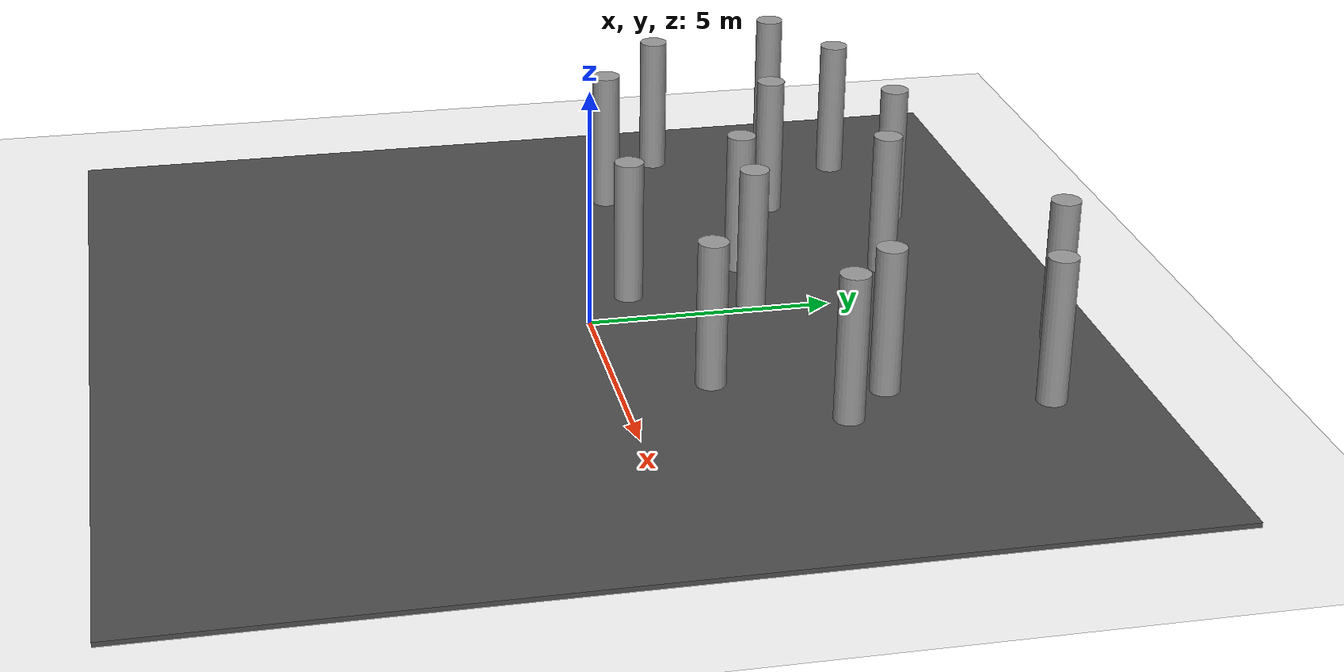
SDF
<sdf version="1.6">
 <world name="default">
  <model name="ground_plane">
   <static>1</static>
   <link name="link">
    <collision name="collision">
     <geometry><plane><normal>0 0 1</normal><size>100 100</size></plane></geometry>
     <surface><friction><ode><mu>100</mu><mu2>50</mu2></ode></friction></surface>
    </collision>
    <visual name="visual">
     <cast_shadows>0</cast_shadows>
     <geometry><plane><normal>0 0 1</normal><size>100 100</size></plane></geometry>
     <material>
      <script><uri>file://media/materials/scripts/gazebo.material</uri><name>Gazebo/Grey</name></script>
     </material>
    </visual>
   </link>
  </model>
  <model name="asphalt_plane">
   <static>1</static>
   <link name="link">
    <collision name="collision"><geometry><box><size>20 20 0.1</size></box></geometry></collision>
    <visual name="visual">
     <cast_shadows>0</cast_shadows>
     <geometry><box><size>20 20 0.1</size></box></geometry>
     <material>
      <script>
       <uri>model://asphalt_plane/materials/scripts</uri>
       <uri>model://asphalt_plane/materials/textures</uri>
       <name>vrc/asphalt</name>
      </script>
     </material>
    </visual>
   </link>
  </model>
  <model name="Untitled">
   <link name="link_1">
    <inertial>
     <mass>1</mass>
     <inertia><ixx>0.145833</ixx><ixy>0</ixy><ixz>0</ixz><iyy>0.145833</iyy><iyz>0</iyz><izz>0.125</izz></inertia>
    </inertial>
    <visual name="visual">
     <geometry><cylinder><radius>0.3</radius><length>5</length></cylinder></geometry>
     <material>
      <lighting>1</lighting>
      <script><uri>file://media/materials/scripts/gazebo.material</uri><name>Gazebo/Grey</name></script>
      <shader type="pixel"><normal_map>__default__</normal_map></shader>
      <ambient>0.3 0.3 0.3 1</ambient>
      <diffuse>0.7 0.7 0.7 1</diffuse>
      <specular>0.01 0.01 0.01 1</specular>
      <emissive>0 0 0 1</emissive>
     </material>
    </visual>
    <collision name="collision">
     <geometry><cylinder><radius>0.5</radius><length>1</length></cylinder></geometry>
     <surface>
      <friction>
       <ode><mu>1</mu><mu2>1</mu2><fdir1>0 0 0</fdir1><slip1>0</slip1><slip2>0</slip2></ode>
       <torsional>
        <coefficient>1</coefficient>
        <patch_radius>0</patch_radius>
        <surface_radius>0</surface_radius>
        <use_patch_radius>1</use_patch_radius>
        <ode><slip>0</slip></ode>
       </torsional>
      </friction>
      <bounce><restitution_coefficient>0</restitution_coefficient><threshold>1e+06</threshold></bounce>
      <contact>
       <collide_without_contact>0</collide_without_contact>
       <collide_without_contact_bitmask>1</collide_without_contact_bitmask>
       <collide_bitmask>1</collide_bitmask>
       <ode>
        <soft_cfm>0</soft_cfm>
        <soft_erp>0.2</soft_erp>
        <kp>1e+13</kp>
        <kd>1</kd>
        <max_vel>0.01</max_vel>
        <min_depth>0</min_depth>
       </ode>
       <bullet>
        <split_impulse>1</split_impulse>
        <split_impulse_penetration_threshold>-0.01</split_impulse_penetration_threshold>
        <soft_cfm>0</soft_cfm>
        <soft_erp>0.2</soft_erp>
        <kp>1e+13</kp>
        <kd>1</kd>
       </bullet>
      </contact>
     </surface>
    </collision>
   </link>
   <static>0</static>
   <pose>3.13644 1.77713 0.550029 -3e-06 -5.9e-05 0.014093</pose>
  </model>
  <model name="Untitled_clone">
   <link name="link_1">
    <inertial>
     <mass>1</mass>
     <inertia><ixx>0.145833</ixx><ixy>0</ixy><ixz>0</ixz><iyy>0.145833</iyy><iyz>0</iyz><izz>0.125</izz></inertia>
    </inertial>
    <visual name="visual">
     <geometry><cylinder><radius>0.3</radius><length>5</length></cylinder></geometry>
     <material>
      <lighting>1</lighting>
      <script><uri>file://media/materials/scripts/gazebo.material</uri><name>Gazebo/Grey</name></script>
      <shader type="pixel"><normal_map>__default__</normal_map></shader>
      <ambient>0.3 0.3 0.3 1</ambient>
      <diffuse>0.7 0.7 0.7 1</diffuse>
      <specular>0.01 0.01 0.01 1</specular>
      <emissive>0 0 0 1</emissive>
     </material>
    </visual>
    <collision name="collision">
     <geometry><cylinder><radius>0.5</radius><length>1</length></cylinder></geometry>
     <surface>
      <friction>
       <ode><mu>1</mu><mu2>1</mu2><fdir1>0 0 0</fdir1><slip1>0</slip1><slip2>0</slip2></ode>
       <torsional>
        <coefficient>1</coefficient>
        <patch_radius>0</patch_radius>
        <surface_radius>0</surface_radius>
        <use_patch_radius>1</use_patch_radius>
        <ode><slip>0</slip></ode>
       </torsional>
      </friction>
      <bounce><restitution_coefficient>0</restitution_coefficient><threshold>1e+06</threshold></bounce>
      <contact>
       <collide_without_contact>0</collide_without_contact>
       <collide_without_contact_bitmask>1</collide_without_contact_bitmask>
       <collide_bitmask>1</collide_bitmask>
       <ode>
        <soft_cfm>0</soft_cfm>
        <soft_erp>0.2</soft_erp>
        <kp>1e+13</kp>
        <kd>1</kd>
        <max_vel>0.01</max_vel>
        <min_depth>0</min_depth>
       </ode>
       <bullet>
        <split_impulse>1</split_impulse>
        <split_impulse_penetration_threshold>-0.01</split_impulse_penetration_threshold>
        <soft_cfm>0</soft_cfm>
        <soft_erp>0.2</soft_erp>
        <kp>1e+13</kp>
        <kd>1</kd>
       </bullet>
      </contact>
     </surface>
    </collision>
   </link>
   <static>0</static>
   <pose>-0.143533 3.39881 0.549816 -8e-05 6e-06 0.01388</pose>
  </model>
  <model name="Untitled_clone_0">
   <link name="link_1">
    <inertial>
     <mass>1</mass>
     <inertia><ixx>0.145833</ixx><ixy>0</ixy><ixz>0</ixz><iyy>0.145833</iyy><iyz>0</iyz><izz>0.125</izz></inertia>
    </inertial>
    <visual name="visual">
     <geometry><cylinder><radius>0.3</radius><length>5</length></cylinder></geometry>
     <material>
      <lighting>1</lighting>
      <script><uri>file://media/materials/scripts/gazebo.material</uri><name>Gazebo/Grey</name></script>
      <shader type="pixel"><normal_map>__default__</normal_map></shader>
      <ambient>0.3 0.3 0.3 1</ambient>
      <diffuse>0.7 0.7 0.7 1</diffuse>
      <specular>0.01 0.01 0.01 1</specular>
      <emissive>0 0 0 1</emissive>
     </material>
    </visual>
    <collision name="collision">
     <geometry><cylinder><radius>0.5</radius><length>1</length></cylinder></geometry>
     <surface>
      <friction>
       <ode><mu>1</mu><mu2>1</mu2><fdir1>0 0 0</fdir1><slip1>0</slip1><slip2>0</slip2></ode>
       <torsional>
        <coefficient>1</coefficient>
        <patch_radius>0</patch_radius>
        <surface_radius>0</surface_radius>
        <use_patch_radius>1</use_patch_radius>
        <ode><slip>0</slip></ode>
       </torsional>
      </friction>
      <bounce><restitution_coefficient>0</restitution_coefficient><threshold>1e+06</threshold></bounce>
      <contact>
       <collide_without_contact>0</collide_without_contact>
       <collide_without_contact_bitmask>1</collide_without_contact_bitmask>
       <collide_bitmask>1</collide_bitmask>
       <ode>
        <soft_cfm>0</soft_cfm>
        <soft_erp>0.2</soft_erp>
        <kp>1e+13</kp>
        <kd>1</kd>
        <max_vel>0.01</max_vel>
        <min_depth>0</min_depth>
       </ode>
       <bullet>
        <split_impulse>1</split_impulse>
        <split_impulse_penetration_threshold>-0.01</split_impulse_penetration_threshold>
        <soft_cfm>0</soft_cfm>
        <soft_erp>0.2</soft_erp>
        <kp>1e+13</kp>
        <kd>1</kd>
       </bullet>
      </contact>
     </surface>
    </collision>
   </link>
   <static>0</static>
   <pose>3.99979 4.99944 0.549953 1.7e-05 9.6e-05 0.014262</pose>
  </model>
  <model name="Untitled_clone_1">
   <link name="link_1">
    <inertial>
     <mass>1</mass>
     <inertia><ixx>0.145833</ixx><ixy>0</ixy><ixz>0</ixz><iyy>0.145833</iyy><iyz>0</iyz><izz>0.125</izz></inertia>
    </inertial>
    <visual name="visual">
     <geometry><cylinder><radius>0.3</radius><length>5</length></cylinder></geometry>
     <material>
      <lighting>1</lighting>
      <script><uri>file://media/materials/scripts/gazebo.material</uri><name>Gazebo/Grey</name></script>
      <shader type="pixel"><normal_map>__default__</normal_map></shader>
      <ambient>0.3 0.3 0.3 1</ambient>
      <diffuse>0.7 0.7 0.7 1</diffuse>
      <specular>0.01 0.01 0.01 1</specular>
      <emissive>0 0 0 1</emissive>
     </material>
    </visual>
    <collision name="collision">
     <geometry><cylinder><radius>0.5</radius><length>1</length></cylinder></geometry>
     <surface>
      <friction>
       <ode><mu>1</mu><mu2>1</mu2><fdir1>0 0 0</fdir1><slip1>0</slip1><slip2>0</slip2></ode>
       <torsional>
        <coefficient>1</coefficient>
        <patch_radius>0</patch_radius>
        <surface_radius>0</surface_radius>
        <use_patch_radius>1</use_patch_radius>
        <ode><slip>0</slip></ode>
       </torsional>
      </friction>
      <bounce><restitution_coefficient>0</restitution_coefficient><threshold>1e+06</threshold></bounce>
      <contact>
       <collide_without_contact>0</collide_without_contact>
       <collide_without_contact_bitmask>1</collide_without_contact_bitmask>
       <collide_bitmask>1</collide_bitmask>
       <ode>
        <soft_cfm>0</soft_cfm>
        <soft_erp>0.2</soft_erp>
        <kp>1e+13</kp>
        <kd>1</kd>
        <max_vel>0.01</max_vel>
        <min_depth>0</min_depth>
       </ode>
       <bullet>
        <split_impulse>1</split_impulse>
        <split_impulse_penetration_threshold>-0.01</split_impulse_penetration_threshold>
        <soft_cfm>0</soft_cfm>
        <soft_erp>0.2</soft_erp>
        <kp>1e+13</kp>
        <kd>1</kd>
       </bullet>
      </contact>
     </surface>
    </collision>
   </link>
   <static>0</static>
   <pose>4.99957 3.9995 0.549984 4e-06 3.1e-05 0.013668</pose>
  </model>
  <model name="Untitled_clone_6">
   <link name="link_1">
    <inertial>
     <mass>1</mass>
     <inertia><ixx>0.145833</ixx><ixy>0</ixy><ixz>0</ixz><iyy>0.145833</iyy><iyz>0</iyz><izz>0.125</izz></inertia>
    </inertial>
    <visual name="visual">
     <geometry><cylinder><radius>0.3</radius><length>5</length></cylinder></geometry>
     <material>
      <lighting>1</lighting>
      <script><uri>file://media/materials/scripts/gazebo.material</uri><name>Gazebo/Grey</name></script>
      <shader type="pixel"><normal_map>__default__</normal_map></shader>
      <ambient>0.3 0.3 0.3 1</ambient>
      <diffuse>0.7 0.7 0.7 1</diffuse>
      <specular>0.01 0.01 0.01 1</specular>
      <emissive>0 0 0 1</emissive>
     </material>
    </visual>
    <collision name="collision">
     <geometry><cylinder><radius>0.5</radius><length>1</length></cylinder></geometry>
     <surface>
      <friction>
       <ode><mu>1</mu><mu2>1</mu2><fdir1>0 0 0</fdir1><slip1>0</slip1><slip2>0</slip2></ode>
       <torsional>
        <coefficient>1</coefficient>
        <patch_radius>0</patch_radius>
        <surface_radius>0</surface_radius>
        <use_patch_radius>1</use_patch_radius>
        <ode><slip>0</slip></ode>
       </torsional>
      </friction>
      <bounce><restitution_coefficient>0</restitution_coefficient><threshold>1e+06</threshold></bounce>
      <contact>
       <collide_without_contact>0</collide_without_contact>
       <collide_without_contact_bitmask>1</collide_without_contact_bitmask>
       <collide_bitmask>1</collide_bitmask>
       <ode>
        <soft_cfm>0</soft_cfm>
        <soft_erp>0.2</soft_erp>
        <kp>1e+13</kp>
        <kd>1</kd>
        <max_vel>0.01</max_vel>
        <min_depth>0</min_depth>
       </ode>
       <bullet>
        <split_impulse>1</split_impulse>
        <split_impulse_penetration_threshold>-0.01</split_impulse_penetration_threshold>
        <soft_cfm>0</soft_cfm>
        <soft_erp>0.2</soft_erp>
        <kp>1e+13</kp>
        <kd>1</kd>
       </bullet>
      </contact>
     </surface>
    </collision>
   </link>
   <static>0</static>
   <pose>-6.00035 1.50269 0.550023 -1.4e-05 -4.5e-05 0.013903</pose>
  </model>
  <model name="Untitled_clone_7">
   <link name="link_1">
    <inertial>
     <mass>1</mass>
     <inertia><ixx>0.145833</ixx><ixy>0</ixy><ixz>0</ixz><iyy>0.145833</iyy><iyz>0</iyz><izz>0.125</izz></inertia>
    </inertial>
    <visual name="visual">
     <geometry><cylinder><radius>0.3</radius><length>5</length></cylinder></geometry>
     <material>
      <lighting>1</lighting>
      <script><uri>file://media/materials/scripts/gazebo.material</uri><name>Gazebo/Grey</name></script>
      <shader type="pixel"><normal_map>__default__</normal_map></shader>
      <ambient>0.3 0.3 0.3 1</ambient>
      <diffuse>0.7 0.7 0.7 1</diffuse>
      <specular>0.01 0.01 0.01 1</specular>
      <emissive>0 0 0 1</emissive>
     </material>
    </visual>
    <collision name="collision">
     <geometry><cylinder><radius>0.5</radius><length>1</length></cylinder></geometry>
     <surface>
      <friction>
       <ode><mu>1</mu><mu2>1</mu2><fdir1>0 0 0</fdir1><slip1>0</slip1><slip2>0</slip2></ode>
       <torsional>
        <coefficient>1</coefficient>
        <patch_radius>0</patch_radius>
        <surface_radius>0</surface_radius>
        <use_patch_radius>1</use_patch_radius>
        <ode><slip>0</slip></ode>
       </torsional>
      </friction>
      <bounce><restitution_coefficient>0</restitution_coefficient><threshold>1e+06</threshold></bounce>
      <contact>
       <collide_without_contact>0</collide_without_contact>
       <collide_without_contact_bitmask>1</collide_without_contact_bitmask>
       <collide_bitmask>1</collide_bitmask>
       <ode>
        <soft_cfm>0</soft_cfm>
        <soft_erp>0.2</soft_erp>
        <kp>1e+13</kp>
        <kd>1</kd>
        <max_vel>0.01</max_vel>
        <min_depth>0</min_depth>
       </ode>
       <bullet>
        <split_impulse>1</split_impulse>
        <split_impulse_penetration_threshold>-0.01</split_impulse_penetration_threshold>
        <soft_cfm>0</soft_cfm>
        <soft_erp>0.2</soft_erp>
        <kp>1e+13</kp>
        <kd>1</kd>
       </bullet>
      </contact>
     </surface>
    </collision>
   </link>
   <static>0</static>
   <pose>-5.00031 4.99965 0.549987 -1e-06 2.7e-05 0.013865</pose>
  </model>
  <model name="Untitled_clone_8">
   <link name="link_1">
    <inertial>
     <mass>1</mass>
     <inertia><ixx>0.145833</ixx><ixy>0</ixy><ixz>0</ixz><iyy>0.145833</iyy><iyz>0</iyz><izz>0.125</izz></inertia>
    </inertial>
    <visual name="visual">
     <geometry><cylinder><radius>0.3</radius><length>5</length></cylinder></geometry>
     <material>
      <lighting>1</lighting>
      <script><uri>file://media/materials/scripts/gazebo.material</uri><name>Gazebo/Grey</name></script>
      <shader type="pixel"><normal_map>__default__</normal_map></shader>
      <ambient>0.3 0.3 0.3 1</ambient>
      <diffuse>0.7 0.7 0.7 1</diffuse>
      <specular>0.01 0.01 0.01 1</specular>
      <emissive>0 0 0 1</emissive>
     </material>
    </visual>
    <collision name="collision">
     <geometry><cylinder><radius>0.5</radius><length>1</length></cylinder></geometry>
     <surface>
      <friction>
       <ode><mu>1</mu><mu2>1</mu2><fdir1>0 0 0</fdir1><slip1>0</slip1><slip2>0</slip2></ode>
       <torsional>
        <coefficient>1</coefficient>
        <patch_radius>0</patch_radius>
        <surface_radius>0</surface_radius>
        <use_patch_radius>1</use_patch_radius>
        <ode><slip>0</slip></ode>
       </torsional>
      </friction>
      <bounce><restitution_coefficient>0</restitution_coefficient><threshold>1e+06</threshold></bounce>
      <contact>
       <collide_without_contact>0</collide_without_contact>
       <collide_without_contact_bitmask>1</collide_without_contact_bitmask>
       <collide_bitmask>1</collide_bitmask>
       <ode>
        <soft_cfm>0</soft_cfm>
        <soft_erp>0.2</soft_erp>
        <kp>1e+13</kp>
        <kd>1</kd>
        <max_vel>0.01</max_vel>
        <min_depth>0</min_depth>
       </ode>
       <bullet>
        <split_impulse>1</split_impulse>
        <split_impulse_penetration_threshold>-0.01</split_impulse_penetration_threshold>
        <soft_cfm>0</soft_cfm>
        <soft_erp>0.2</soft_erp>
        <kp>1e+13</kp>
        <kd>1</kd>
       </bullet>
      </contact>
     </surface>
    </collision>
   </link>
   <static>0</static>
   <pose>-1.40123 6.57859 0.550014 1e-06 3.4e-05 0.013762</pose>
  </model>
  <model name="Untitled_clone_9">
   <link name="link_1">
    <inertial>
     <mass>1</mass>
     <inertia><ixx>0.145833</ixx><ixy>0</ixy><ixz>0</ixz><iyy>0.145833</iyy><iyz>0</iyz><izz>0.125</izz></inertia>
    </inertial>
    <visual name="visual">
     <geometry><cylinder><radius>0.3</radius><length>5</length></cylinder></geometry>
     <material>
      <lighting>1</lighting>
      <script><uri>file://media/materials/scripts/gazebo.material</uri><name>Gazebo/Grey</name></script>
      <shader type="pixel"><normal_map>__default__</normal_map></shader>
      <ambient>0.3 0.3 0.3 1</ambient>
      <diffuse>0.7 0.7 0.7 1</diffuse>
      <specular>0.01 0.01 0.01 1</specular>
      <emissive>0 0 0 1</emissive>
     </material>
    </visual>
    <collision name="collision">
     <geometry><cylinder><radius>0.5</radius><length>1</length></cylinder></geometry>
     <surface>
      <friction>
       <ode><mu>1</mu><mu2>1</mu2><fdir1>0 0 0</fdir1><slip1>0</slip1><slip2>0</slip2></ode>
       <torsional>
        <coefficient>1</coefficient>
        <patch_radius>0</patch_radius>
        <surface_radius>0</surface_radius>
        <use_patch_radius>1</use_patch_radius>
        <ode><slip>0</slip></ode>
       </torsional>
      </friction>
      <bounce><restitution_coefficient>0</restitution_coefficient><threshold>1e+06</threshold></bounce>
      <contact>
       <collide_without_contact>0</collide_without_contact>
       <collide_without_contact_bitmask>1</collide_without_contact_bitmask>
       <collide_bitmask>1</collide_bitmask>
       <ode>
        <soft_cfm>0</soft_cfm>
        <soft_erp>0.2</soft_erp>
        <kp>1e+13</kp>
        <kd>1</kd>
        <max_vel>0.01</max_vel>
        <min_depth>0</min_depth>
       </ode>
       <bullet>
        <split_impulse>1</split_impulse>
        <split_impulse_penetration_threshold>-0.01</split_impulse_penetration_threshold>
        <soft_cfm>0</soft_cfm>
        <soft_erp>0.2</soft_erp>
        <kp>1e+13</kp>
        <kd>1</kd>
       </bullet>
      </contact>
     </surface>
    </collision>
   </link>
   <static>0</static>
   <pose>-2.00041 3.59288 0.549903 -2.9e-05 -2.4e-05 0.013803</pose>
  </model>
  <model name="Untitled_clone_14">
   <link name="link_1">
    <inertial>
     <mass>1</mass>
     <inertia><ixx>0.145833</ixx><ixy>0</ixy><ixz>0</ixz><iyy>0.145833</iyy><iyz>0</iyz><izz>0.125</izz></inertia>
    </inertial>
    <visual name="visual">
     <geometry><cylinder><radius>0.3</radius><length>5</length></cylinder></geometry>
     <material>
      <lighting>1</lighting>
      <script><uri>file://media/materials/scripts/gazebo.material</uri><name>Gazebo/Grey</name></script>
      <shader type="pixel"><normal_map>__default__</normal_map></shader>
      <ambient>0.3 0.3 0.3 1</ambient>
      <diffuse>0.7 0.7 0.7 1</diffuse>
      <specular>0.01 0.01 0.01 1</specular>
      <emissive>0 0 0 1</emissive>
     </material>
    </visual>
    <collision name="collision">
     <geometry><cylinder><radius>0.5</radius><length>1</length></cylinder></geometry>
     <surface>
      <friction>
       <ode><mu>1</mu><mu2>1</mu2><fdir1>0 0 0</fdir1><slip1>0</slip1><slip2>0</slip2></ode>
       <torsional>
        <coefficient>1</coefficient>
        <patch_radius>0</patch_radius>
        <surface_radius>0</surface_radius>
        <use_patch_radius>1</use_patch_radius>
        <ode><slip>0</slip></ode>
       </torsional>
      </friction>
      <bounce><restitution_coefficient>0</restitution_coefficient><threshold>1e+06</threshold></bounce>
      <contact>
       <collide_without_contact>0</collide_without_contact>
       <collide_without_contact_bitmask>1</collide_without_contact_bitmask>
       <collide_bitmask>1</collide_bitmask>
       <ode>
        <soft_cfm>0</soft_cfm>
        <soft_erp>0.2</soft_erp>
        <kp>1e+13</kp>
        <kd>1</kd>
        <max_vel>0.01</max_vel>
        <min_depth>0</min_depth>
       </ode>
       <bullet>
        <split_impulse>1</split_impulse>
        <split_impulse_penetration_threshold>-0.01</split_impulse_penetration_threshold>
        <soft_cfm>0</soft_cfm>
        <soft_erp>0.2</soft_erp>
        <kp>1e+13</kp>
        <kd>1</kd>
       </bullet>
      </contact>
     </surface>
    </collision>
   </link>
   <static>0</static>
   <pose>4.99964 7.99962 0.549963 -3e-06 -7.8e-05 0.014067</pose>
  </model>
  <model name="Untitled_clone_15">
   <link name="link_1">
    <inertial>
     <mass>1</mass>
     <inertia><ixx>0.145833</ixx><ixy>0</ixy><ixz>0</ixz><iyy>0.145833</iyy><iyz>0</iyz><izz>0.125</izz></inertia>
    </inertial>
    <visual name="visual">
     <geometry><cylinder><radius>0.3</radius><length>5</length></cylinder></geometry>
     <material>
      <lighting>1</lighting>
      <script><uri>file://media/materials/scripts/gazebo.material</uri><name>Gazebo/Grey</name></script>
      <shader type="pixel"><normal_map>__default__</normal_map></shader>
      <ambient>0.3 0.3 0.3 1</ambient>
      <diffuse>0.7 0.7 0.7 1</diffuse>
      <specular>0.01 0.01 0.01 1</specular>
      <emissive>0 0 0 1</emissive>
     </material>
    </visual>
    <collision name="collision">
     <geometry><cylinder><radius>0.5</radius><length>1</length></cylinder></geometry>
     <surface>
      <friction>
       <ode><mu>1</mu><mu2>1</mu2><fdir1>0 0 0</fdir1><slip1>0</slip1><slip2>0</slip2></ode>
       <torsional>
        <coefficient>1</coefficient>
        <patch_radius>0</patch_radius>
        <surface_radius>0</surface_radius>
        <use_patch_radius>1</use_patch_radius>
        <ode><slip>0</slip></ode>
       </torsional>
      </friction>
      <bounce><restitution_coefficient>0</restitution_coefficient><threshold>1e+06</threshold></bounce>
      <contact>
       <collide_without_contact>0</collide_without_contact>
       <collide_without_contact_bitmask>1</collide_without_contact_bitmask>
       <collide_bitmask>1</collide_bitmask>
       <ode>
        <soft_cfm>0</soft_cfm>
        <soft_erp>0.2</soft_erp>
        <kp>1e+13</kp>
        <kd>1</kd>
        <max_vel>0.01</max_vel>
        <min_depth>0</min_depth>
       </ode>
       <bullet>
        <split_impulse>1</split_impulse>
        <split_impulse_penetration_threshold>-0.01</split_impulse_penetration_threshold>
        <soft_cfm>0</soft_cfm>
        <soft_erp>0.2</soft_erp>
        <kp>1e+13</kp>
        <kd>1</kd>
       </bullet>
      </contact>
     </surface>
    </collision>
   </link>
   <static>0</static>
   <pose>-4 7.52106 0.549907 -4.3e-05 -1.3e-05 0.01423</pose>
  </model>
  <model name="Untitled_clone_16">
   <link name="link_1">
    <inertial>
     <mass>1</mass>
     <inertia><ixx>0.145833</ixx><ixy>0</ixy><ixz>0</ixz><iyy>0.145833</iyy><iyz>0</iyz><izz>0.125</izz></inertia>
    </inertial>
    <visual name="visual">
     <geometry><cylinder><radius>0.3</radius><length>5</length></cylinder></geometry>
     <material>
      <lighting>1</lighting>
      <script><uri>file://media/materials/scripts/gazebo.material</uri><name>Gazebo/Grey</name></script>
      <shader type="pixel"><normal_map>__default__</normal_map></shader>
      <ambient>0.3 0.3 0.3 1</ambient>
      <diffuse>0.7 0.7 0.7 1</diffuse>
      <specular>0.01 0.01 0.01 1</specular>
      <emissive>0 0 0 1</emissive>
     </material>
    </visual>
    <collision name="collision">
     <geometry><cylinder><radius>0.5</radius><length>1</length></cylinder></geometry>
     <surface>
      <friction>
       <ode><mu>1</mu><mu2>1</mu2><fdir1>0 0 0</fdir1><slip1>0</slip1><slip2>0</slip2></ode>
       <torsional>
        <coefficient>1</coefficient>
        <patch_radius>0</patch_radius>
        <surface_radius>0</surface_radius>
        <use_patch_radius>1</use_patch_radius>
        <ode><slip>0</slip></ode>
       </torsional>
      </friction>
      <bounce><restitution_coefficient>0</restitution_coefficient><threshold>1e+06</threshold></bounce>
      <contact>
       <collide_without_contact>0</collide_without_contact>
       <collide_without_contact_bitmask>1</collide_without_contact_bitmask>
       <collide_bitmask>1</collide_bitmask>
       <ode>
        <soft_cfm>0</soft_cfm>
        <soft_erp>0.2</soft_erp>
        <kp>1e+13</kp>
        <kd>1</kd>
        <max_vel>0.01</max_vel>
        <min_depth>0</min_depth>
       </ode>
       <bullet>
        <split_impulse>1</split_impulse>
        <split_impulse_penetration_threshold>-0.01</split_impulse_penetration_threshold>
        <soft_cfm>0</soft_cfm>
        <soft_erp>0.2</soft_erp>
        <kp>1e+13</kp>
        <kd>1</kd>
       </bullet>
      </contact>
     </surface>
    </collision>
   </link>
   <static>0</static>
   <pose>-7.00009 6.99984 0.54989 -4e-06 1e-05 0.014187</pose>
  </model>
  <model name="Untitled_clone_17">
   <link name="link_1">
    <inertial>
     <mass>1</mass>
     <inertia><ixx>0.145833</ixx><ixy>0</ixy><ixz>0</ixz><iyy>0.145833</iyy><iyz>0</iyz><izz>0.125</izz></inertia>
    </inertial>
    <visual name="visual">
     <geometry><cylinder><radius>0.3</radius><length>5</length></cylinder></geometry>
     <material>
      <lighting>1</lighting>
      <script><uri>file://media/materials/scripts/gazebo.material</uri><name>Gazebo/Grey</name></script>
      <shader type="pixel"><normal_map>__default__</normal_map></shader>
      <ambient>0.3 0.3 0.3 1</ambient>
      <diffuse>0.7 0.7 0.7 1</diffuse>
      <specular>0.01 0.01 0.01 1</specular>
      <emissive>0 0 0 1</emissive>
     </material>
    </visual>
    <collision name="collision">
     <geometry><cylinder><radius>0.5</radius><length>1</length></cylinder></geometry>
     <surface>
      <friction>
       <ode><mu>1</mu><mu2>1</mu2><fdir1>0 0 0</fdir1><slip1>0</slip1><slip2>0</slip2></ode>
       <torsional>
        <coefficient>1</coefficient>
        <patch_radius>0</patch_radius>
        <surface_radius>0</surface_radius>
        <use_patch_radius>1</use_patch_radius>
        <ode><slip>0</slip></ode>
       </torsional>
      </friction>
      <bounce><restitution_coefficient>0</restitution_coefficient><threshold>1e+06</threshold></bounce>
      <contact>
       <collide_without_contact>0</collide_without_contact>
       <collide_without_contact_bitmask>1</collide_without_contact_bitmask>
       <collide_bitmask>1</collide_bitmask>
       <ode>
        <soft_cfm>0</soft_cfm>
        <soft_erp>0.2</soft_erp>
        <kp>1e+13</kp>
        <kd>1</kd>
        <max_vel>0.01</max_vel>
        <min_depth>0</min_depth>
       </ode>
       <bullet>
        <split_impulse>1</split_impulse>
        <split_impulse_penetration_threshold>-0.01</split_impulse_penetration_threshold>
        <soft_cfm>0</soft_cfm>
        <soft_erp>0.2</soft_erp>
        <kp>1e+13</kp>
        <kd>1</kd>
       </bullet>
      </contact>
     </surface>
    </collision>
   </link>
   <static>0</static>
   <pose>-7.99997 2.99987 0.550018 -1.1e-05 -3.6e-05 0.014525</pose>
  </model>
  <model name="Untitled_clone_25">
   <link name="link_1">
    <inertial>
     <mass>1</mass>
     <inertia><ixx>0.145833</ixx><ixy>0</ixy><ixz>0</ixz><iyy>0.145833</iyy><iyz>0</iyz><izz>0.125</izz></inertia>
    </inertial>
    <visual name="visual">
     <geometry><cylinder><radius>0.3</radius><length>5</length></cylinder></geometry>
     <material>
      <lighting>1</lighting>
      <script><uri>file://media/materials/scripts/gazebo.material</uri><name>Gazebo/Grey</name></script>
      <shader type="pixel"><normal_map>__default__</normal_map></shader>
      <ambient>0.3 0.3 0.3 1</ambient>
      <diffuse>0.7 0.7 0.7 1</diffuse>
      <specular>0.01 0.01 0.01 1</specular>
      <emissive>0 0 0 1</emissive>
     </material>
    </visual>
    <collision name="collision">
     <geometry><cylinder><radius>0.5</radius><length>1</length></cylinder></geometry>
     <surface>
      <friction>
       <ode><mu>1</mu><mu2>1</mu2><fdir1>0 0 0</fdir1><slip1>0</slip1><slip2>0</slip2></ode>
       <torsional>
        <coefficient>1</coefficient>
        <patch_radius>0</patch_radius>
        <surface_radius>0</surface_radius>
        <use_patch_radius>1</use_patch_radius>
        <ode><slip>0</slip></ode>
       </torsional>
      </friction>
      <bounce><restitution_coefficient>0</restitution_coefficient><threshold>1e+06</threshold></bounce>
      <contact>
       <collide_without_contact>0</collide_without_contact>
       <collide_without_contact_bitmask>1</collide_without_contact_bitmask>
       <collide_bitmask>1</collide_bitmask>
       <ode>
        <soft_cfm>0</soft_cfm>
        <soft_erp>0.2</soft_erp>
        <kp>1e+13</kp>
        <kd>1</kd>
        <max_vel>0.01</max_vel>
        <min_depth>0</min_depth>
       </ode>
       <bullet>
        <split_impulse>1</split_impulse>
        <split_impulse_penetration_threshold>-0.01</split_impulse_penetration_threshold>
        <soft_cfm>0</soft_cfm>
        <soft_erp>0.2</soft_erp>
        <kp>1e+13</kp>
        <kd>1</kd>
       </bullet>
      </contact>
     </surface>
    </collision>
   </link>
   <static>0</static>
   <pose>-8.99999 5.99993 0.549977 -3e-06 -5.8e-05 0.014244</pose>
  </model>
  <model name="Untitled_clone_26">
   <link name="link_1">
    <inertial>
     <mass>1</mass>
     <inertia><ixx>0.145833</ixx><ixy>0</ixy><ixz>0</ixz><iyy>0.145833</iyy><iyz>0</iyz><izz>0.125</izz></inertia>
    </inertial>
    <visual name="visual">
     <geometry><cylinder><radius>0.3</radius><length>5</length></cylinder></geometry>
     <material>
      <lighting>1</lighting>
      <script><uri>file://media/materials/scripts/gazebo.material</uri><name>Gazebo/Grey</name></script>
      <shader type="pixel"><normal_map>__default__</normal_map></shader>
      <ambient>0.3 0.3 0.3 1</ambient>
      <diffuse>0.7 0.7 0.7 1</diffuse>
      <specular>0.01 0.01 0.01 1</specular>
      <emissive>0 0 0 1</emissive>
     </material>
    </visual>
    <collision name="collision">
     <geometry><cylinder><radius>0.5</radius><length>1</length></cylinder></geometry>
     <surface>
      <friction>
       <ode><mu>1</mu><mu2>1</mu2><fdir1>0 0 0</fdir1><slip1>0</slip1><slip2>0</slip2></ode>
       <torsional>
        <coefficient>1</coefficient>
        <patch_radius>0</patch_radius>
        <surface_radius>0</surface_radius>
        <use_patch_radius>1</use_patch_radius>
        <ode><slip>0</slip></ode>
       </torsional>
      </friction>
      <bounce><restitution_coefficient>0</restitution_coefficient><threshold>1e+06</threshold></bounce>
      <contact>
       <collide_without_contact>0</collide_without_contact>
       <collide_without_contact_bitmask>1</collide_without_contact_bitmask>
       <collide_bitmask>1</collide_bitmask>
       <ode>
        <soft_cfm>0</soft_cfm>
        <soft_erp>0.2</soft_erp>
        <kp>1e+13</kp>
        <kd>1</kd>
        <max_vel>0.01</max_vel>
        <min_depth>0</min_depth>
       </ode>
       <bullet>
        <split_impulse>1</split_impulse>
        <split_impulse_penetration_threshold>-0.01</split_impulse_penetration_threshold>
        <soft_cfm>0</soft_cfm>
        <soft_erp>0.2</soft_erp>
        <kp>1e+13</kp>
        <kd>1</kd>
       </bullet>
      </contact>
     </surface>
    </collision>
   </link>
   <static>0</static>
   <pose>2.48261 8.99985 0.54996 -6.3e-05 5.9e-05 0.014255</pose>
  </model>
  <model name="Untitled_clone_27">
   <link name="link_1">
    <inertial>
     <mass>1</mass>
     <inertia><ixx>0.145833</ixx><ixy>0</ixy><ixz>0</ixz><iyy>0.145833</iyy><iyz>0</iyz><izz>0.125</izz></inertia>
    </inertial>
    <visual name="visual">
     <geometry><cylinder><radius>0.3</radius><length>5</length></cylinder></geometry>
     <material>
      <lighting>1</lighting>
      <script><uri>file://media/materials/scripts/gazebo.material</uri><name>Gazebo/Grey</name></script>
      <shader type="pixel"><normal_map>__default__</normal_map></shader>
      <ambient>0.3 0.3 0.3 1</ambient>
      <diffuse>0.7 0.7 0.7 1</diffuse>
      <specular>0.01 0.01 0.01 1</specular>
      <emissive>0 0 0 1</emissive>
     </material>
    </visual>
    <collision name="collision">
     <geometry><cylinder><radius>0.5</radius><length>1</length></cylinder></geometry>
     <surface>
      <friction>
       <ode><mu>1</mu><mu2>1</mu2><fdir1>0 0 0</fdir1><slip1>0</slip1><slip2>0</slip2></ode>
       <torsional>
        <coefficient>1</coefficient>
        <patch_radius>0</patch_radius>
        <surface_radius>0</surface_radius>
        <use_patch_radius>1</use_patch_radius>
        <ode><slip>0</slip></ode>
       </torsional>
      </friction>
      <bounce><restitution_coefficient>0</restitution_coefficient><threshold>1e+06</threshold></bounce>
      <contact>
       <collide_without_contact>0</collide_without_contact>
       <collide_without_contact_bitmask>1</collide_without_contact_bitmask>
       <collide_bitmask>1</collide_bitmask>
       <ode>
        <soft_cfm>0</soft_cfm>
        <soft_erp>0.2</soft_erp>
        <kp>1e+13</kp>
        <kd>1</kd>
        <max_vel>0.01</max_vel>
        <min_depth>0</min_depth>
       </ode>
       <bullet>
        <split_impulse>1</split_impulse>
        <split_impulse_penetration_threshold>-0.01</split_impulse_penetration_threshold>
        <soft_cfm>0</soft_cfm>
        <soft_erp>0.2</soft_erp>
        <kp>1e+13</kp>
        <kd>1</kd>
       </bullet>
      </contact>
     </surface>
    </collision>
   </link>
   <static>0</static>
   <pose>-1.00011 0.999931 0.550029 -1e-06 -5.9e-05 0.014081</pose>
  </model>
 </world>
</sdf>
